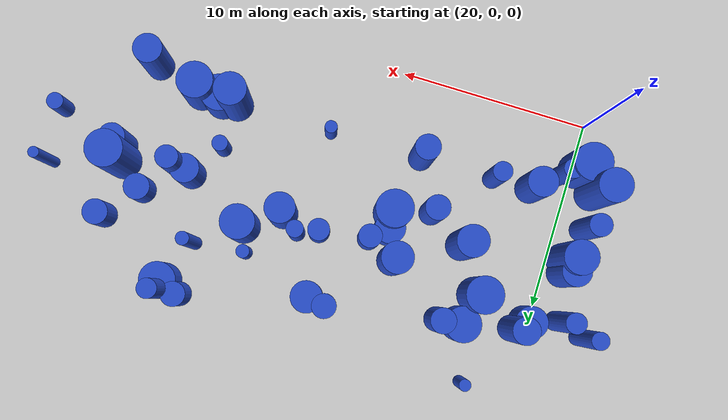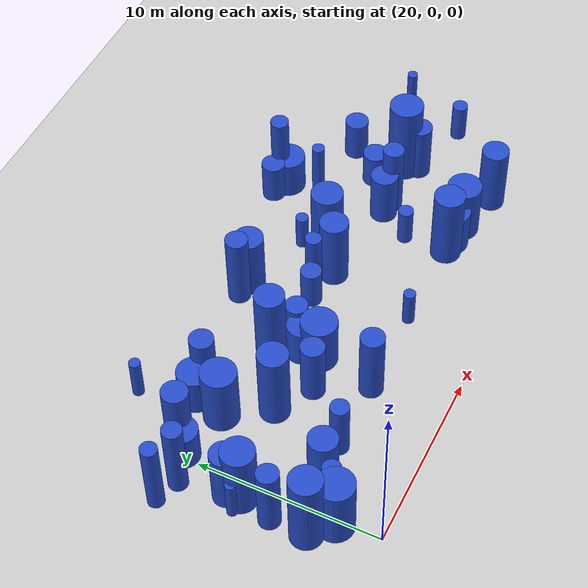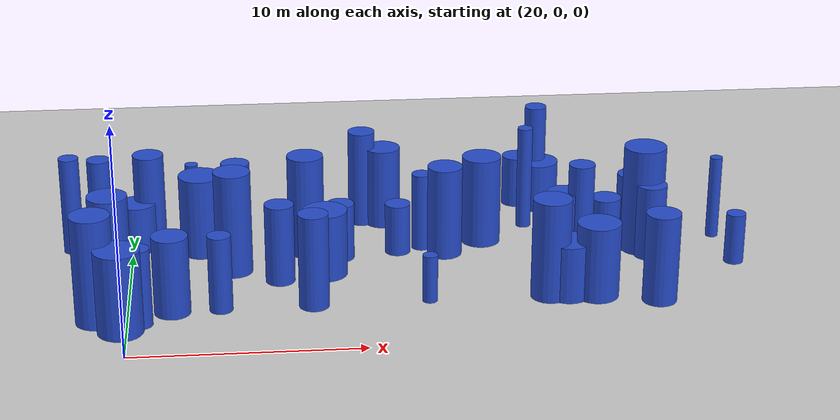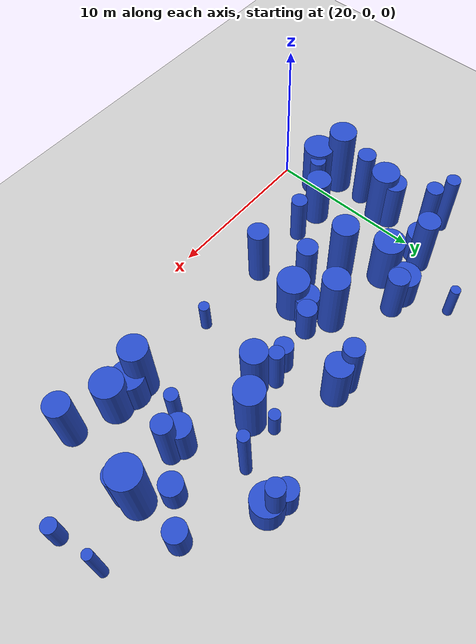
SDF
<sdf version="1.6">
 <world name="default">
  <model name="ground_plane">
   <static>1</static>
   <link name="link">
    <collision name="collision">
     <geometry><plane><normal>0 0 1</normal><size>100 100</size></plane></geometry>
     <surface><friction><ode><mu>100</mu><mu2>50</mu2></ode></friction></surface>
    </collision>
    <visual name="visual">
     <cast_shadows>0</cast_shadows>
     <geometry><plane><normal>0 0 1</normal><size>100 100</size></plane></geometry>
     <material>
      <script><uri>file://media/materials/scripts/gazebo.material</uri><name>Gazebo/Grey</name></script>
     </material>
    </visual>
   </link>
  </model>
  <model name="1">
   <static>0</static>
   <link name="link">
    <inertial>
     <mass>2</mass>
     <inertia>
      <ixx>1.04273</ixx>
      <ixy>0</ixy>
      <ixz>0</ixz>
      <iyy>1.04273</iyy>
      <iyz>0</iyz>
      <izz>0.0959348</izz>
     </inertia>
    </inertial>
    <collision name="collision">
     <geometry><cylinder><length>2.44307</length><radius>0.309734</radius></cylinder></geometry>
     <surface><contact><collide_without_contact>1</collide_without_contact></contact></surface>
    </collision>
    <visual name="visual">
     <geometry><cylinder><length>2.44307</length><radius>0.309734</radius></cylinder></geometry>
     <material>
      <script><uri>file://media/materials/scripts/gazebo.material</uri><name>Gazebo/Blue</name></script>
     </material>
    </visual>
    <gravity>0</gravity>
   </link>
   <pose>22.6289 14.9061 1.22153 0 -0 0</pose>
  </model>
  <model name="17">
   <static>0</static>
   <link name="link">
    <inertial>
     <mass>2</mass>
     <inertia><ixx>2.1683</ixx><ixy>0</ixy><ixz>0</ixz><iyy>2.1683</iyy><iyz>0</iyz><izz>0.244924</izz></inertia>
    </inertial>
    <collision name="collision">
     <geometry><cylinder><length>3.50357</length><radius>0.494898</radius></cylinder></geometry>
     <surface><contact><collide_without_contact>1</collide_without_contact></contact></surface>
    </collision>
    <visual name="visual">
     <geometry><cylinder><length>3.50357</length><radius>0.494898</radius></cylinder></geometry>
     <material>
      <script><uri>file://media/materials/scripts/gazebo.material</uri><name>Gazebo/Blue</name></script>
     </material>
    </visual>
    <gravity>0</gravity>
   </link>
   <pose>20.5912 2.97204 1.75179 0 -0 0</pose>
  </model>
  <model name="18">
   <static>0</static>
   <link name="link">
    <inertial>
     <mass>2</mass>
     <inertia><ixx>4.07132</ixx><ixy>0</ixy><ixz>0</ixz><iyy>4.07132</iyy><iyz>0</iyz><izz>0.25791</izz></inertia>
    </inertial>
    <collision name="collision">
     <geometry><cylinder><length>4.86356</length><radius>0.507848</radius></cylinder></geometry>
     <surface><contact><collide_without_contact>1</collide_without_contact></contact></surface>
    </collision>
    <visual name="visual">
     <geometry><cylinder><length>4.86356</length><radius>0.507848</radius></cylinder></geometry>
     <material>
      <script><uri>file://media/materials/scripts/gazebo.material</uri><name>Gazebo/Blue</name></script>
     </material>
    </visual>
    <gravity>0</gravity>
   </link>
   <pose>38.9741 14.813 2.43178 0 -0 0</pose>
  </model>
  <model name="28">
   <static>0</static>
   <link name="link">
    <inertial>
     <mass>2</mass>
     <inertia><ixx>4.33046</ixx><ixy>0</ixy><ixz>0</ixz><iyy>4.33046</iyy><iyz>0</iyz><izz>0.751665</izz></inertia>
    </inertial>
    <collision name="collision">
     <geometry><cylinder><length>4.87112</length><radius>0.866986</radius></cylinder></geometry>
     <surface><contact><collide_without_contact>1</collide_without_contact></contact></surface>
    </collision>
    <visual name="visual">
     <geometry><cylinder><length>4.87112</length><radius>0.866986</radius></cylinder></geometry>
     <material>
      <script><uri>file://media/materials/scripts/gazebo.material</uri><name>Gazebo/Blue</name></script>
     </material>
    </visual>
    <gravity>0</gravity>
   </link>
   <pose>18.6765 3.41081 2.43556 0 -0 0</pose>
  </model>
  <model name="36">
   <static>0</static>
   <link name="link">
    <inertial>
     <mass>2</mass>
     <inertia><ixx>2.47359</ixx><ixy>0</ixy><ixz>0</ixz><iyy>2.47359</iyy><iyz>0</iyz><izz>0.571806</izz></inertia>
    </inertial>
    <collision name="collision">
     <geometry><cylinder><length>3.623</length><radius>0.756179</radius></cylinder></geometry>
     <surface><contact><collide_without_contact>1</collide_without_contact></contact></surface>
    </collision>
    <visual name="visual">
     <geometry><cylinder><length>3.623</length><radius>0.756179</radius></cylinder></geometry>
     <material>
      <script><uri>file://media/materials/scripts/gazebo.material</uri><name>Gazebo/Blue</name></script>
     </material>
    </visual>
    <gravity>0</gravity>
   </link>
   <pose>19.0534 7.89403 1.8115 0 -0 0</pose>
  </model>
  <model name="48">
   <static>0</static>
   <link name="link">
    <inertial>
     <mass>2</mass>
     <inertia><ixx>3.38207</ixx><ixy>0</ixy><ixz>0</ixz><iyy>3.38207</iyy><iyz>0</iyz><izz>0.486769</izz></inertia>
    </inertial>
    <collision name="collision">
     <geometry><cylinder><length>4.3396</length><radius>0.697689</radius></cylinder></geometry>
     <surface><contact><collide_without_contact>1</collide_without_contact></contact></surface>
    </collision>
    <visual name="visual">
     <geometry><cylinder><length>4.3396</length><radius>0.697689</radius></cylinder></geometry>
     <material>
      <script><uri>file://media/materials/scripts/gazebo.material</uri><name>Gazebo/Blue</name></script>
     </material>
    </visual>
    <gravity>0</gravity>
   </link>
   <pose>20.7865 11.4476 2.1698 0 -0 0</pose>
  </model>
  <model name="51">
   <static>0</static>
   <link name="link">
    <inertial>
     <mass>2</mass>
     <inertia><ixx>2.12546</ixx><ixy>0</ixy><ixz>0</ixz><iyy>2.12546</iyy><iyz>0</iyz><izz>0.256393</izz></inertia>
    </inertial>
    <collision name="collision">
     <geometry><cylinder><length>3.46173</length><radius>0.506353</radius></cylinder></geometry>
     <surface><contact><collide_without_contact>1</collide_without_contact></contact></surface>
    </collision>
    <visual name="visual">
     <geometry><cylinder><length>3.46173</length><radius>0.506353</radius></cylinder></geometry>
     <material>
      <script><uri>file://media/materials/scripts/gazebo.material</uri><name>Gazebo/Blue</name></script>
     </material>
    </visual>
    <gravity>0</gravity>
   </link>
   <pose>23.9364 4.12695 1.73086 0 -0 0</pose>
  </model>
  <model name="54">
   <static>0</static>
   <link name="link">
    <inertial>
     <mass>2</mass>
     <inertia><ixx>3.78955</ixx><ixy>0</ixy><ixz>0</ixz><iyy>3.78955</iyy><iyz>0</iyz><izz>0.716468</izz></inertia>
    </inertial>
    <collision name="collision">
     <geometry><cylinder><length>4.53739</length><radius>0.846444</radius></cylinder></geometry>
     <surface><contact><collide_without_contact>1</collide_without_contact></contact></surface>
    </collision>
    <visual name="visual">
     <geometry><cylinder><length>4.53739</length><radius>0.846444</radius></cylinder></geometry>
     <material>
      <script><uri>file://media/materials/scripts/gazebo.material</uri><name>Gazebo/Blue</name></script>
     </material>
    </visual>
    <gravity>0</gravity>
   </link>
   <pose>38.1122 4.28516 2.26869 0 -0 0</pose>
  </model>
  <model name="65">
   <static>0</static>
   <link name="link">
    <inertial>
     <mass>2</mass>
     <inertia><ixx>4.10178</ixx><ixy>0</ixy><ixz>0</ixz><iyy>4.10178</iyy><iyz>0</iyz><izz>0.667926</izz></inertia>
    </inertial>
    <collision name="collision">
     <geometry><cylinder><length>4.75467</length><radius>0.817267</radius></cylinder></geometry>
     <surface><contact><collide_without_contact>1</collide_without_contact></contact></surface>
    </collision>
    <visual name="visual">
     <geometry><cylinder><length>4.75467</length><radius>0.817267</radius></cylinder></geometry>
     <material>
      <script><uri>file://media/materials/scripts/gazebo.material</uri><name>Gazebo/Blue</name></script>
     </material>
    </visual>
    <gravity>0</gravity>
   </link>
   <pose>24.5379 8.02641 2.37734 0 -0 0</pose>
  </model>
  <model name="74">
   <static>0</static>
   <link name="link">
    <inertial>
     <mass>2</mass>
     <inertia><ixx>4.55226</ixx><ixy>0</ixy><ixz>0</ixz><iyy>4.55226</iyy><iyz>0</iyz><izz>0.905784</izz></inertia>
    </inertial>
    <collision name="collision">
     <geometry><cylinder><length>4.95946</length><radius>0.951727</radius></cylinder></geometry>
     <surface><contact><collide_without_contact>1</collide_without_contact></contact></surface>
    </collision>
    <visual name="visual">
     <geometry><cylinder><length>4.95946</length><radius>0.951727</radius></cylinder></geometry>
     <material>
      <script><uri>file://media/materials/scripts/gazebo.material</uri><name>Gazebo/Blue</name></script>
     </material>
    </visual>
    <gravity>0</gravity>
   </link>
   <pose>43.0457 8.93679 2.47973 0 -0 0</pose>
  </model>
  <model name="75">
   <static>0</static>
   <link name="link">
    <inertial>
     <mass>2</mass>
     <inertia><ixx>0.9445</ixx><ixy>0</ixy><ixz>0</ixz><iyy>0.9445</iyy><iyz>0</iyz><izz>0.472755</izz></inertia>
    </inertial>
    <collision name="collision">
     <geometry><cylinder><length>2.06125</length><radius>0.687572</radius></cylinder></geometry>
     <surface><contact><collide_without_contact>1</collide_without_contact></contact></surface>
    </collision>
    <visual name="visual">
     <geometry><cylinder><length>2.06125</length><radius>0.687572</radius></cylinder></geometry>
     <material>
      <script><uri>file://media/materials/scripts/gazebo.material</uri><name>Gazebo/Blue</name></script>
     </material>
    </visual>
    <gravity>0</gravity>
   </link>
   <pose>41.5858 10.1246 1.03062 0 -0 0</pose>
  </model>
  <model name="78">
   <static>0</static>
   <link name="link">
    <inertial>
     <mass>2</mass>
     <inertia>
      <ixx>1.00668</ixx>
      <ixy>0</ixy>
      <ixz>0</ixz>
      <iyy>1.00668</iyy>
      <iyz>0</iyz>
      <izz>0.0862787</izz>
     </inertia>
    </inertial>
    <collision name="collision">
     <geometry><cylinder><length>2.40442</length><radius>0.293732</radius></cylinder></geometry>
     <surface><contact><collide_without_contact>1</collide_without_contact></contact></surface>
    </collision>
    <visual name="visual">
     <geometry><cylinder><length>2.40442</length><radius>0.293732</radius></cylinder></geometry>
     <material>
      <script><uri>file://media/materials/scripts/gazebo.material</uri><name>Gazebo/Blue</name></script>
     </material>
    </visual>
    <gravity>0</gravity>
   </link>
   <pose>18.3294 7.23147 1.20221 0 -0 0</pose>
  </model>
  <model name="82">
   <static>0</static>
   <link name="link">
    <inertial>
     <mass>2</mass>
     <inertia><ixx>3.25795</ixx><ixy>0</ixy><ixz>0</ixz><iyy>3.25795</iyy><iyz>0</iyz><izz>0.785089</izz></inertia>
    </inertial>
    <collision name="collision">
     <geometry><cylinder><length>4.14638</length><radius>0.886053</radius></cylinder></geometry>
     <surface><contact><collide_without_contact>1</collide_without_contact></contact></surface>
    </collision>
    <visual name="visual">
     <geometry><cylinder><length>4.14638</length><radius>0.886053</radius></cylinder></geometry>
     <material>
      <script><uri>file://media/materials/scripts/gazebo.material</uri><name>Gazebo/Blue</name></script>
     </material>
    </visual>
    <gravity>0</gravity>
   </link>
   <pose>35.8503 10.436 2.07319 0 -0 0</pose>
  </model>
  <model name="84">
   <static>0</static>
   <link name="link">
    <inertial>
     <mass>2</mass>
     <inertia><ixx>3.64044</ixx><ixy>0</ixy><ixz>0</ixz><iyy>3.64044</iyy><iyz>0</iyz><izz>0.277497</izz></inertia>
    </inertial>
    <collision name="collision">
     <geometry><cylinder><length>4.58368</length><radius>0.52678</radius></cylinder></geometry>
     <surface><contact><collide_without_contact>1</collide_without_contact></contact></surface>
    </collision>
    <visual name="visual">
     <geometry><cylinder><length>4.58368</length><radius>0.52678</radius></cylinder></geometry>
     <material>
      <script><uri>file://media/materials/scripts/gazebo.material</uri><name>Gazebo/Blue</name></script>
     </material>
    </visual>
    <gravity>0</gravity>
   </link>
   <pose>18.6475 10.4009 2.29184 0 -0 0</pose>
  </model>
  <model name="93">
   <static>0</static>
   <link name="link">
    <inertial>
     <mass>2</mass>
     <inertia><ixx>1.83775</ixx><ixy>0</ixy><ixz>0</ixz><iyy>1.83775</iyy><iyz>0</iyz><izz>0.573765</izz></inertia>
    </inertial>
    <collision name="collision">
     <geometry><cylinder><length>3.05045</length><radius>0.757473</radius></cylinder></geometry>
     <surface><contact><collide_without_contact>1</collide_without_contact></contact></surface>
    </collision>
    <visual name="visual">
     <geometry><cylinder><length>3.05045</length><radius>0.757473</radius></cylinder></geometry>
     <material>
      <script><uri>file://media/materials/scripts/gazebo.material</uri><name>Gazebo/Blue</name></script>
     </material>
    </visual>
    <gravity>0</gravity>
   </link>
   <pose>39.3373 8.57951 1.52522 0 -0 0</pose>
  </model>
  <model name="96">
   <static>0</static>
   <link name="link">
    <inertial>
     <mass>2</mass>
     <inertia><ixx>1.17514</ixx><ixy>0</ixy><ixz>0</ixz><iyy>1.17514</iyy><iyz>0</iyz><izz>0.419325</izz></inertia>
    </inertial>
    <collision name="collision">
     <geometry><cylinder><length>2.40684</length><radius>0.647553</radius></cylinder></geometry>
     <surface><contact><collide_without_contact>1</collide_without_contact></contact></surface>
    </collision>
    <visual name="visual">
     <geometry><cylinder><length>2.40684</length><radius>0.647553</radius></cylinder></geometry>
     <material>
      <script><uri>file://media/materials/scripts/gazebo.material</uri><name>Gazebo/Blue</name></script>
     </material>
    </visual>
    <gravity>0</gravity>
   </link>
   <pose>38.0768 14.8261 1.20342 0 -0 0</pose>
  </model>
  <model name="98">
   <static>0</static>
   <link name="link">
    <inertial>
     <mass>2</mass>
     <inertia><ixx>0.99824</ixx><ixy>0</ixy><ixz>0</ixz><iyy>0.99824</iyy><iyz>0</iyz><izz>0.190361</izz></inertia>
    </inertial>
    <collision name="collision">
     <geometry><cylinder><length>2.32774</length><radius>0.436304</radius></cylinder></geometry>
     <surface><contact><collide_without_contact>1</collide_without_contact></contact></surface>
    </collision>
    <visual name="visual">
     <geometry><cylinder><length>2.32774</length><radius>0.436304</radius></cylinder></geometry>
     <material>
      <script><uri>file://media/materials/scripts/gazebo.material</uri><name>Gazebo/Blue</name></script>
     </material>
    </visual>
    <gravity>0</gravity>
   </link>
   <pose>46.9036 7.13651 1.16387 0 -0 0</pose>
  </model>
  <model name="113">
   <static>0</static>
   <link name="link">
    <inertial>
     <mass>2</mass>
     <inertia><ixx>2.38926</ixx><ixy>0</ixy><ixz>0</ixz><iyy>2.38926</iyy><iyz>0</iyz><izz>0.902672</izz></inertia>
    </inertial>
    <collision name="collision">
     <geometry><cylinder><length>3.40992</length><radius>0.95009</radius></cylinder></geometry>
     <surface><contact><collide_without_contact>1</collide_without_contact></contact></surface>
    </collision>
    <visual name="visual">
     <geometry><cylinder><length>3.40992</length><radius>0.95009</radius></cylinder></geometry>
     <material>
      <script><uri>file://media/materials/scripts/gazebo.material</uri><name>Gazebo/Blue</name></script>
     </material>
    </visual>
    <gravity>0</gravity>
   </link>
   <pose>40.1435 4.17281 1.70496 0 -0 0</pose>
  </model>
  <model name="114">
   <static>0</static>
   <link name="link">
    <inertial>
     <mass>2</mass>
     <inertia><ixx>2.1935</ixx><ixy>0</ixy><ixz>0</ixz><iyy>2.1935</iyy><iyz>0</iyz><izz>0.462287</izz></inertia>
    </inertial>
    <collision name="collision">
     <geometry><cylinder><length>3.43134</length><radius>0.679917</radius></cylinder></geometry>
     <surface><contact><collide_without_contact>1</collide_without_contact></contact></surface>
    </collision>
    <visual name="visual">
     <geometry><cylinder><length>3.43134</length><radius>0.679917</radius></cylinder></geometry>
     <material>
      <script><uri>file://media/materials/scripts/gazebo.material</uri><name>Gazebo/Blue</name></script>
     </material>
    </visual>
    <gravity>0</gravity>
   </link>
   <pose>43.25 8.131 1.71567 0 -0 0</pose>
  </model>
  <model name="115">
   <static>0</static>
   <link name="link">
    <inertial>
     <mass>2</mass>
     <inertia><ixx>3.41373</ixx><ixy>0</ixy><ixz>0</ixz><iyy>3.41373</iyy><iyz>0</iyz><izz>0.343115</izz></inertia>
    </inertial>
    <collision name="collision">
     <geometry><cylinder><length>4.41056</length><radius>0.58576</radius></cylinder></geometry>
     <surface><contact><collide_without_contact>1</collide_without_contact></contact></surface>
    </collision>
    <visual name="visual">
     <geometry><cylinder><length>4.41056</length><radius>0.58576</radius></cylinder></geometry>
     <material>
      <script><uri>file://media/materials/scripts/gazebo.material</uri><name>Gazebo/Blue</name></script>
     </material>
    </visual>
    <gravity>0</gravity>
   </link>
   <pose>40.0961 8.40578 2.20528 0 -0 0</pose>
  </model>
  <model name="119">
   <static>0</static>
   <link name="link">
    <inertial>
     <mass>2</mass>
     <inertia><ixx>2.67789</ixx><ixy>0</ixy><ixz>0</ixz><iyy>2.67789</iyy><iyz>0</iyz><izz>0.655818</izz></inertia>
    </inertial>
    <collision name="collision">
     <geometry><cylinder><length>3.75498</length><radius>0.809826</radius></cylinder></geometry>
     <surface><contact><collide_without_contact>1</collide_without_contact></contact></surface>
    </collision>
    <visual name="visual">
     <geometry><cylinder><length>3.75498</length><radius>0.809826</radius></cylinder></geometry>
     <material>
      <script><uri>file://media/materials/scripts/gazebo.material</uri><name>Gazebo/Blue</name></script>
     </material>
    </visual>
    <gravity>0</gravity>
   </link>
   <pose>31.524 12.9787 1.87749 0 -0 0</pose>
  </model>
  <model name="120">
   <static>0</static>
   <link name="link">
    <inertial>
     <mass>2</mass>
     <inertia><ixx>1.21863</ixx><ixy>0</ixy><ixz>0</ixz><iyy>1.21863</iyy><iyz>0</iyz><izz>0.648176</izz></inertia>
    </inertial>
    <collision name="collision">
     <geometry><cylinder><length>2.31674</length><radius>0.805094</radius></cylinder></geometry>
     <surface><contact><collide_without_contact>1</collide_without_contact></contact></surface>
    </collision>
    <visual name="visual">
     <geometry><cylinder><length>2.31674</length><radius>0.805094</radius></cylinder></geometry>
     <material>
      <script><uri>file://media/materials/scripts/gazebo.material</uri><name>Gazebo/Blue</name></script>
     </material>
    </visual>
    <gravity>0</gravity>
   </link>
   <pose>28.4753 8.40492 1.15837 0 -0 0</pose>
  </model>
  <model name="122">
   <static>0</static>
   <link name="link">
    <inertial>
     <mass>2</mass>
     <inertia><ixx>3.26531</ixx><ixy>0</ixy><ixz>0</ixz><iyy>3.26531</iyy><iyz>0</iyz><izz>0.4271</izz></inertia>
    </inertial>
    <collision name="collision">
     <geometry><cylinder><length>4.27909</length><radius>0.653529</radius></cylinder></geometry>
     <surface><contact><collide_without_contact>1</collide_without_contact></contact></surface>
    </collision>
    <visual name="visual">
     <geometry><cylinder><length>4.27909</length><radius>0.653529</radius></cylinder></geometry>
     <material>
      <script><uri>file://media/materials/scripts/gazebo.material</uri><name>Gazebo/Blue</name></script>
     </material>
    </visual>
    <gravity>0</gravity>
   </link>
   <pose>27.9079 4.18189 2.13954 0 -0 0</pose>
  </model>
  <model name="124">
   <static>0</static>
   <link name="link">
    <inertial>
     <mass>2</mass>
     <inertia><ixx>3.28363</ixx><ixy>0</ixy><ixz>0</ixz><iyy>3.28363</iyy><iyz>0</iyz><izz>0.618436</izz></inertia>
    </inertial>
    <collision name="collision">
     <geometry><cylinder><length>4.22451</length><radius>0.786407</radius></cylinder></geometry>
     <surface><contact><collide_without_contact>1</collide_without_contact></contact></surface>
    </collision>
    <visual name="visual">
     <geometry><cylinder><length>4.22451</length><radius>0.786407</radius></cylinder></geometry>
     <material>
      <script><uri>file://media/materials/scripts/gazebo.material</uri><name>Gazebo/Blue</name></script>
     </material>
    </visual>
    <gravity>0</gravity>
   </link>
   <pose>34.0434 9.17601 2.11225 0 -0 0</pose>
  </model>
  <model name="130">
   <static>0</static>
   <link name="link">
    <inertial>
     <mass>2</mass>
     <inertia><ixx>2.42182</ixx><ixy>0</ixy><ixz>0</ixz><iyy>2.42182</iyy><iyz>0</iyz><izz>0.418828</izz></inertia>
    </inertial>
    <collision name="collision">
     <geometry><cylinder><length>3.64341</length><radius>0.647169</radius></cylinder></geometry>
     <surface><contact><collide_without_contact>1</collide_without_contact></contact></surface>
    </collision>
    <visual name="visual">
     <geometry><cylinder><length>3.64341</length><radius>0.647169</radius></cylinder></geometry>
     <material>
      <script><uri>file://media/materials/scripts/gazebo.material</uri><name>Gazebo/Blue</name></script>
     </material>
    </visual>
    <gravity>0</gravity>
   </link>
   <pose>26.5421 6.83229 1.82171 0 -0 0</pose>
  </model>
  <model name="132">
   <static>0</static>
   <link name="link">
    <inertial>
     <mass>2</mass>
     <inertia><ixx>1.34527</ixx><ixy>0</ixy><ixz>0</ixz><iyy>1.34527</iyy><iyz>0</iyz><izz>0.376223</izz></inertia>
    </inertial>
    <collision name="collision">
     <geometry><cylinder><length>2.63495</length><radius>0.613371</radius></cylinder></geometry>
     <surface><contact><collide_without_contact>1</collide_without_contact></contact></surface>
    </collision>
    <visual name="visual">
     <geometry><cylinder><length>2.63495</length><radius>0.613371</radius></cylinder></geometry>
     <material>
      <script><uri>file://media/materials/scripts/gazebo.material</uri><name>Gazebo/Blue</name></script>
     </material>
    </visual>
    <gravity>0</gravity>
   </link>
   <pose>29.3354 9.09993 1.31747 0 -0 0</pose>
  </model>
  <model name="133">
   <static>0</static>
   <link name="link">
    <inertial>
     <mass>2</mass>
     <inertia><ixx>2.03008</ixx><ixy>0</ixy><ixz>0</ixz><iyy>2.03008</iyy><iyz>0</iyz><izz>0.9733</izz></inertia>
    </inertial>
    <collision name="collision">
     <geometry><cylinder><length>3.04312</length><radius>0.98656</radius></cylinder></geometry>
     <surface><contact><collide_without_contact>1</collide_without_contact></contact></surface>
    </collision>
    <visual name="visual">
     <geometry><cylinder><length>3.04312</length><radius>0.98656</radius></cylinder></geometry>
     <material>
      <script><uri>file://media/materials/scripts/gazebo.material</uri><name>Gazebo/Blue</name></script>
     </material>
    </visual>
    <gravity>0</gravity>
   </link>
   <pose>28.5566 7.43766 1.52156 0 -0 0</pose>
  </model>
  <model name="135">
   <static>0</static>
   <link name="link">
    <inertial>
     <mass>2</mass>
     <inertia><ixx>3.25624</ixx><ixy>0</ixy><ixz>0</ixz><iyy>3.25624</iyy><iyz>0</iyz><izz>0.78546</izz></inertia>
    </inertial>
    <collision name="collision">
     <geometry><cylinder><length>4.14501</length><radius>0.886262</radius></cylinder></geometry>
     <surface><contact><collide_without_contact>1</collide_without_contact></contact></surface>
    </collision>
    <visual name="visual">
     <geometry><cylinder><length>4.14501</length><radius>0.886262</radius></cylinder></geometry>
     <material>
      <script><uri>file://media/materials/scripts/gazebo.material</uri><name>Gazebo/Blue</name></script>
     </material>
    </visual>
    <gravity>0</gravity>
   </link>
   <pose>19.1514 7.19176 2.0725 0 -0 0</pose>
  </model>
  <model name="140">
   <static>0</static>
   <link name="link">
    <inertial>
     <mass>2</mass>
     <inertia>
      <ixx>2.53092</ixx>
      <ixy>0</ixy>
      <ixz>0</ixz>
      <iyy>2.53092</iyy>
      <iyz>0</iyz>
      <izz>0.0802251</izz>
     </inertia>
    </inertial>
    <collision name="collision">
     <geometry><cylinder><length>3.86586</length><radius>0.28324</radius></cylinder></geometry>
     <surface><contact><collide_without_contact>1</collide_without_contact></contact></surface>
    </collision>
    <visual name="visual">
     <geometry><cylinder><length>3.86586</length><radius>0.28324</radius></cylinder></geometry>
     <material>
      <script><uri>file://media/materials/scripts/gazebo.material</uri><name>Gazebo/Blue</name></script>
     </material>
    </visual>
    <gravity>0</gravity>
   </link>
   <pose>46.6044 10.0674 1.93293 0 -0 0</pose>
  </model>
  <model name="142">
   <static>0</static>
   <link name="link">
    <inertial>
     <mass>2</mass>
     <inertia><ixx>1.31599</ixx><ixy>0</ixy><ixz>0</ixz><iyy>1.31599</iyy><iyz>0</iyz><izz>0.910445</izz></inertia>
    </inertial>
    <collision name="collision">
     <geometry><cylinder><length>2.27258</length><radius>0.954172</radius></cylinder></geometry>
     <surface><contact><collide_without_contact>1</collide_without_contact></contact></surface>
    </collision>
    <visual name="visual">
     <geometry><cylinder><length>2.27258</length><radius>0.954172</radius></cylinder></geometry>
     <material>
      <script><uri>file://media/materials/scripts/gazebo.material</uri><name>Gazebo/Blue</name></script>
     </material>
    </visual>
    <gravity>0</gravity>
   </link>
   <pose>39.0696 14.3892 1.13629 0 -0 0</pose>
  </model>
  <model name="145">
   <static>0</static>
   <link name="link">
    <inertial>
     <mass>2</mass>
     <inertia>
      <ixx>0.900555</ixx>
      <ixy>0</ixy>
      <ixz>0</ixz>
      <iyy>0.900555</iyy>
      <iyz>0</iyz>
      <izz>0.175606</izz>
     </inertia>
    </inertial>
    <collision name="collision">
     <geometry><cylinder><length>2.20828</length><radius>0.419053</radius></cylinder></geometry>
     <surface><contact><collide_without_contact>1</collide_without_contact></contact></surface>
    </collision>
    <visual name="visual">
     <geometry><cylinder><length>2.20828</length><radius>0.419053</radius></cylinder></geometry>
     <material>
      <script><uri>file://media/materials/scripts/gazebo.material</uri><name>Gazebo/Blue</name></script>
     </material>
    </visual>
    <gravity>0</gravity>
   </link>
   <pose>38.1286 6.74492 1.10414 0 -0 0</pose>
  </model>
  <model name="146">
   <static>0</static>
   <link name="link">
    <inertial>
     <mass>2</mass>
     <inertia><ixx>1.31435</ixx><ixy>0</ixy><ixz>0</ixz><iyy>1.31435</iyy><iyz>0</iyz><izz>0.872518</izz></inertia>
    </inertial>
    <collision name="collision">
     <geometry><cylinder><length>2.29533</length><radius>0.934087</radius></cylinder></geometry>
     <surface><contact><collide_without_contact>1</collide_without_contact></contact></surface>
    </collision>
    <visual name="visual">
     <geometry><cylinder><length>2.29533</length><radius>0.934087</radius></cylinder></geometry>
     <material>
      <script><uri>file://media/materials/scripts/gazebo.material</uri><name>Gazebo/Blue</name></script>
     </material>
    </visual>
    <gravity>0</gravity>
   </link>
   <pose>23.5244 12.0109 1.14766 0 -0 0</pose>
  </model>
  <model name="147">
   <static>0</static>
   <link name="link">
    <inertial>
     <mass>2</mass>
     <inertia>
      <ixx>0.824184</ixx>
      <ixy>0</ixy>
      <ixz>0</ixz>
      <iyy>0.824184</iyy>
      <iyz>0</iyz>
      <izz>0.109364</izz>
     </inertia>
    </inertial>
    <collision name="collision">
     <geometry><cylinder><length>2.14872</length><radius>0.330702</radius></cylinder></geometry>
     <surface><contact><collide_without_contact>1</collide_without_contact></contact></surface>
    </collision>
    <visual name="visual">
     <geometry><cylinder><length>2.14872</length><radius>0.330702</radius></cylinder></geometry>
     <material>
      <script><uri>file://media/materials/scripts/gazebo.material</uri><name>Gazebo/Blue</name></script>
     </material>
    </visual>
    <gravity>0</gravity>
   </link>
   <pose>32.8903 4.2564 1.07436 0 -0 0</pose>
  </model>
  <model name="162">
   <static>0</static>
   <link name="link">
    <inertial>
     <mass>2</mass>
     <inertia><ixx>2.99816</ixx><ixy>0</ixy><ixz>0</ixz><iyy>2.99816</iyy><iyz>0</iyz><izz>0.344422</izz></inertia>
    </inertial>
    <collision name="collision">
     <geometry><cylinder><length>4.11773</length><radius>0.586875</radius></cylinder></geometry>
     <surface><contact><collide_without_contact>1</collide_without_contact></contact></surface>
    </collision>
    <visual name="visual">
     <geometry><cylinder><length>4.11773</length><radius>0.586875</radius></cylinder></geometry>
     <material>
      <script><uri>file://media/materials/scripts/gazebo.material</uri><name>Gazebo/Blue</name></script>
     </material>
    </visual>
    <gravity>0</gravity>
   </link>
   <pose>18.6722 5.38973 2.05886 0 -0 0</pose>
  </model>
  <model name="163">
   <static>0</static>
   <link name="link">
    <inertial>
     <mass>2</mass>
     <inertia><ixx>3.981</ixx><ixy>0</ixy><ixz>0</ixz><iyy>3.981</iyy><iyz>0</iyz><izz>0.664565</izz></inertia>
    </inertial>
    <collision name="collision">
     <geometry><cylinder><length>4.67892</length><radius>0.815208</radius></cylinder></geometry>
     <surface><contact><collide_without_contact>1</collide_without_contact></contact></surface>
    </collision>
    <visual name="visual">
     <geometry><cylinder><length>4.67892</length><radius>0.815208</radius></cylinder></geometry>
     <material>
      <script><uri>file://media/materials/scripts/gazebo.material</uri><name>Gazebo/Blue</name></script>
     </material>
    </visual>
    <gravity>0</gravity>
   </link>
   <pose>27.8156 9.86092 2.33946 0 -0 0</pose>
  </model>
  <model name="165">
   <static>0</static>
   <link name="link">
    <inertial>
     <mass>2</mass>
     <inertia><ixx>2.28797</ixx><ixy>0</ixy><ixz>0</ixz><iyy>2.28797</iyy><iyz>0</iyz><izz>0.431575</izz></inertia>
    </inertial>
    <collision name="collision">
     <geometry><cylinder><length>3.52606</length><radius>0.656943</radius></cylinder></geometry>
     <surface><contact><collide_without_contact>1</collide_without_contact></contact></surface>
    </collision>
    <visual name="visual">
     <geometry><cylinder><length>3.52606</length><radius>0.656943</radius></cylinder></geometry>
     <material>
      <script><uri>file://media/materials/scripts/gazebo.material</uri><name>Gazebo/Blue</name></script>
     </material>
    </visual>
    <gravity>0</gravity>
   </link>
   <pose>24.6912 12.1351 1.76303 0 -0 0</pose>
  </model>
  <model name="173">
   <static>0</static>
   <link name="link">
    <inertial>
     <mass>2</mass>
     <inertia><ixx>1.1987</ixx><ixy>0</ixy><ixz>0</ixz><iyy>1.1987</iyy><iyz>0</iyz><izz>0.436702</izz></inertia>
    </inertial>
    <collision name="collision">
     <geometry><cylinder><length>2.4253</length><radius>0.660834</radius></cylinder></geometry>
     <surface><contact><collide_without_contact>1</collide_without_contact></contact></surface>
    </collision>
    <visual name="visual">
     <geometry><cylinder><length>2.4253</length><radius>0.660834</radius></cylinder></geometry>
     <material>
      <script><uri>file://media/materials/scripts/gazebo.material</uri><name>Gazebo/Blue</name></script>
     </material>
    </visual>
    <gravity>0</gravity>
   </link>
   <pose>43.1344 11.9873 1.21265 0 -0 0</pose>
  </model>
  <model name="180">
   <static>0</static>
   <link name="link">
    <inertial>
     <mass>2</mass>
     <inertia><ixx>2.26067</ixx><ixy>0</ixy><ixz>0</ixz><iyy>2.26067</iyy><iyz>0</iyz><izz>0.199813</izz></inertia>
    </inertial>
    <collision name="collision">
     <geometry><cylinder><length>3.60063</length><radius>0.447005</radius></cylinder></geometry>
     <surface><contact><collide_without_contact>1</collide_without_contact></contact></surface>
    </collision>
    <visual name="visual">
     <geometry><cylinder><length>3.60063</length><radius>0.447005</radius></cylinder></geometry>
     <material>
      <script><uri>file://media/materials/scripts/gazebo.material</uri><name>Gazebo/Blue</name></script>
     </material>
    </visual>
    <gravity>0</gravity>
   </link>
   <pose>33.0643 9.92457 1.80032 0 -0 0</pose>
  </model>
  <model name="187">
   <static>0</static>
   <link name="link">
    <inertial>
     <mass>2</mass>
     <inertia><ixx>1.08859</ixx><ixy>0</ixy><ixz>0</ixz><iyy>1.08859</iyy><iyz>0</iyz><izz>0.332545</izz></inertia>
    </inertial>
    <collision name="collision">
     <geometry><cylinder><length>2.35242</length><radius>0.576667</radius></cylinder></geometry>
     <surface><contact><collide_without_contact>1</collide_without_contact></contact></surface>
    </collision>
    <visual name="visual">
     <geometry><cylinder><length>2.35242</length><radius>0.576667</radius></cylinder></geometry>
     <material>
      <script><uri>file://media/materials/scripts/gazebo.material</uri><name>Gazebo/Blue</name></script>
     </material>
    </visual>
    <gravity>0</gravity>
   </link>
   <pose>31.9469 9.53714 1.17621 0 -0 0</pose>
  </model>
  <model name="192">
   <static>0</static>
   <link name="link">
    <inertial>
     <mass>2</mass>
     <inertia><ixx>3.57441</ixx><ixy>0</ixy><ixz>0</ixz><iyy>3.57441</iyy><iyz>0</iyz><izz>0.380893</izz></inertia>
    </inertial>
    <collision name="collision">
     <geometry><cylinder><length>4.50597</length><radius>0.617166</radius></cylinder></geometry>
     <surface><contact><collide_without_contact>1</collide_without_contact></contact></surface>
    </collision>
    <visual name="visual">
     <geometry><cylinder><length>4.50597</length><radius>0.617166</radius></cylinder></geometry>
     <material>
      <script><uri>file://media/materials/scripts/gazebo.material</uri><name>Gazebo/Blue</name></script>
     </material>
    </visual>
    <gravity>0</gravity>
   </link>
   <pose>30.5597 13.1513 2.25299 0 -0 0</pose>
  </model>
  <model name="197">
   <static>0</static>
   <link name="link">
    <inertial>
     <mass>2</mass>
     <inertia><ixx>2.40664</ixx><ixy>0</ixy><ixz>0</ixz><iyy>2.40664</iyy><iyz>0</iyz><izz>0.612438</izz></inertia>
    </inertial>
    <collision name="collision">
     <geometry><cylinder><length>3.55</length><radius>0.782584</radius></cylinder></geometry>
     <surface><contact><collide_without_contact>1</collide_without_contact></contact></surface>
    </collision>
    <visual name="visual">
     <geometry><cylinder><length>3.55</length><radius>0.782584</radius></cylinder></geometry>
     <material>
      <script><uri>file://media/materials/scripts/gazebo.material</uri><name>Gazebo/Blue</name></script>
     </material>
    </visual>
    <gravity>0</gravity>
   </link>
   <pose>21.8757 4.04784 1.775 0 -0 0</pose>
  </model>
  <model name="199">
   <static>0</static>
   <link name="link">
    <inertial>
     <mass>2</mass>
     <inertia><ixx>3.97337</ixx><ixy>0</ixy><ixz>0</ixz><iyy>3.97337</iyy><iyz>0</iyz><izz>0.118229</izz></inertia>
    </inertial>
    <collision name="collision">
     <geometry><cylinder><length>4.84619</length><radius>0.343845</radius></cylinder></geometry>
     <surface><contact><collide_without_contact>1</collide_without_contact></contact></surface>
    </collision>
    <visual name="visual">
     <geometry><cylinder><length>4.84619</length><radius>0.343845</radius></cylinder></geometry>
     <material>
      <script><uri>file://media/materials/scripts/gazebo.material</uri><name>Gazebo/Blue</name></script>
     </material>
    </visual>
    <gravity>0</gravity>
   </link>
   <pose>38.0664 12.0133 2.42309 0 -0 0</pose>
  </model>
  <model name="203">
   <static>0</static>
   <link name="link">
    <inertial>
     <mass>2</mass>
     <inertia><ixx>3.50185</ixx><ixy>0</ixy><ixz>0</ixz><iyy>3.50185</iyy><iyz>0</iyz><izz>0.202633</izz></inertia>
    </inertial>
    <collision name="collision">
     <geometry><cylinder><length>4.51699</length><radius>0.450148</radius></cylinder></geometry>
     <surface><contact><collide_without_contact>1</collide_without_contact></contact></surface>
    </collision>
    <visual name="visual">
     <geometry><cylinder><length>4.51699</length><radius>0.450148</radius></cylinder></geometry>
     <material>
      <script><uri>file://media/materials/scripts/gazebo.material</uri><name>Gazebo/Blue</name></script>
     </material>
    </visual>
    <gravity>0</gravity>
   </link>
   <pose>17.2866 10.877 2.2585 0 -0 0</pose>
  </model>
  <model name="211">
   <static>0</static>
   <link name="link">
    <inertial>
     <mass>2</mass>
     <inertia><ixx>2.75737</ixx><ixy>0</ixy><ixz>0</ixz><iyy>2.75737</iyy><iyz>0</iyz><izz>0.919582</izz></inertia>
    </inertial>
    <collision name="collision">
     <geometry><cylinder><length>3.71288</length><radius>0.958948</radius></cylinder></geometry>
     <surface><contact><collide_without_contact>1</collide_without_contact></contact></surface>
    </collision>
    <visual name="visual">
     <geometry><cylinder><length>3.71288</length><radius>0.958948</radius></cylinder></geometry>
     <material>
      <script><uri>file://media/materials/scripts/gazebo.material</uri><name>Gazebo/Blue</name></script>
     </material>
    </visual>
    <gravity>0</gravity>
   </link>
   <pose>23.0966 10.3226 1.85644 0 -0 0</pose>
  </model>
  <model name="214">
   <static>0</static>
   <link name="link">
    <inertial>
     <mass>2</mass>
     <inertia><ixx>1.55721</ixx><ixy>0</ixy><ixz>0</ixz><iyy>1.55721</iyy><iyz>0</iyz><izz>0.920987</izz></inertia>
    </inertial>
    <collision name="collision">
     <geometry><cylinder><length>2.56521</length><radius>0.959681</radius></cylinder></geometry>
     <surface><contact><collide_without_contact>1</collide_without_contact></contact></surface>
    </collision>
    <visual name="visual">
     <geometry><cylinder><length>2.56521</length><radius>0.959681</radius></cylinder></geometry>
     <material>
      <script><uri>file://media/materials/scripts/gazebo.material</uri><name>Gazebo/Blue</name></script>
     </material>
    </visual>
    <gravity>0</gravity>
   </link>
   <pose>38.9179 4.29523 1.2826 0 -0 0</pose>
  </model>
  <model name="215">
   <static>0</static>
   <link name="link">
    <inertial>
     <mass>2</mass>
     <inertia><ixx>3.02705</ixx><ixy>0</ixy><ixz>0</ixz><iyy>3.02705</iyy><iyz>0</iyz><izz>0.565565</izz></inertia>
    </inertial>
    <collision name="collision">
     <geometry><cylinder><length>4.05778</length><radius>0.752041</radius></cylinder></geometry>
     <surface><contact><collide_without_contact>1</collide_without_contact></contact></surface>
    </collision>
    <visual name="visual">
     <geometry><cylinder><length>4.05778</length><radius>0.752041</radius></cylinder></geometry>
     <material>
      <script><uri>file://media/materials/scripts/gazebo.material</uri><name>Gazebo/Blue</name></script>
     </material>
    </visual>
    <gravity>0</gravity>
   </link>
   <pose>42.7429 3.44453 2.02889 0 -0 0</pose>
  </model>
  <model name="223">
   <static>0</static>
   <link name="link">
    <inertial>
     <mass>2</mass>
     <inertia><ixx>0.79333</ixx><ixy>0</ixy><ixz>0</ixz><iyy>0.79333</iyy><iyz>0</iyz><izz>0.125248</izz></inertia>
    </inertial>
    <collision name="collision">
     <geometry><cylinder><length>2.09386</length><radius>0.353905</radius></cylinder></geometry>
     <surface><contact><collide_without_contact>1</collide_without_contact></contact></surface>
    </collision>
    <visual name="visual">
     <geometry><cylinder><length>2.09386</length><radius>0.353905</radius></cylinder></geometry>
     <material>
      <script><uri>file://media/materials/scripts/gazebo.material</uri><name>Gazebo/Blue</name></script>
     </material>
    </visual>
    <gravity>0</gravity>
   </link>
   <pose>35.3536 11.7215 1.04693 0 -0 0</pose>
  </model>
  <model name="231">
   <static>0</static>
   <link name="link">
    <inertial>
     <mass>2</mass>
     <inertia><ixx>2.80087</ixx><ixy>0</ixy><ixz>0</ixz><iyy>2.80087</iyy><iyz>0</iyz><izz>0.964922</izz></inertia>
    </inertial>
    <collision name="collision">
     <geometry><cylinder><length>3.72967</length><radius>0.982305</radius></cylinder></geometry>
     <surface><contact><collide_without_contact>1</collide_without_contact></contact></surface>
    </collision>
    <visual name="visual">
     <geometry><cylinder><length>3.72967</length><radius>0.982305</radius></cylinder></geometry>
     <material>
      <script><uri>file://media/materials/scripts/gazebo.material</uri><name>Gazebo/Blue</name></script>
     </material>
    </visual>
    <gravity>0</gravity>
   </link>
   <pose>19.7493 2.37563 1.86484 0 -0 0</pose>
  </model>
  <model name="232">
   <static>0</static>
   <link name="link">
    <inertial>
     <mass>2</mass>
     <inertia><ixx>1.18005</ixx><ixy>0</ixy><ixz>0</ixz><iyy>1.18005</iyy><iyz>0</iyz><izz>0.704491</izz></inertia>
    </inertial>
    <collision name="collision">
     <geometry><cylinder><length>2.22864</length><radius>0.83934</radius></cylinder></geometry>
     <surface><contact><collide_without_contact>1</collide_without_contact></contact></surface>
    </collision>
    <visual name="visual">
     <geometry><cylinder><length>2.22864</length><radius>0.83934</radius></cylinder></geometry>
     <material>
      <script><uri>file://media/materials/scripts/gazebo.material</uri><name>Gazebo/Blue</name></script>
     </material>
    </visual>
    <gravity>0</gravity>
   </link>
   <pose>20.225 10.9114 1.11432 0 -0 0</pose>
  </model>
  <model name="233">
   <static>0</static>
   <link name="link">
    <inertial>
     <mass>2</mass>
     <inertia>
      <ixx>2.99615</ixx>
      <ixy>0</ixy>
      <ixz>0</ixz>
      <iyy>2.99615</iyy>
      <iyz>0</iyz>
      <izz>0.0662204</izz>
     </inertia>
    </inertial>
    <collision name="collision">
     <geometry><cylinder><length>4.21642</length><radius>0.257333</radius></cylinder></geometry>
     <surface><contact><collide_without_contact>1</collide_without_contact></contact></surface>
    </collision>
    <visual name="visual">
     <geometry><cylinder><length>4.21642</length><radius>0.257333</radius></cylinder></geometry>
     <material>
      <script><uri>file://media/materials/scripts/gazebo.material</uri><name>Gazebo/Blue</name></script>
     </material>
    </visual>
    <gravity>0</gravity>
   </link>
   <pose>30.4978 13.0604 2.10821 0 -0 0</pose>
  </model>
 </world>
</sdf>
